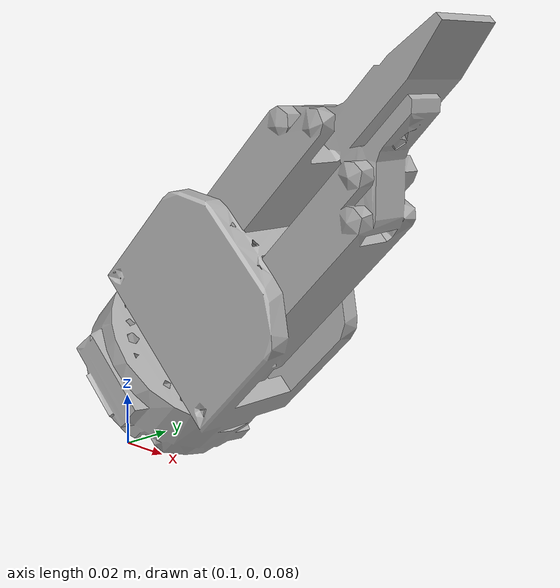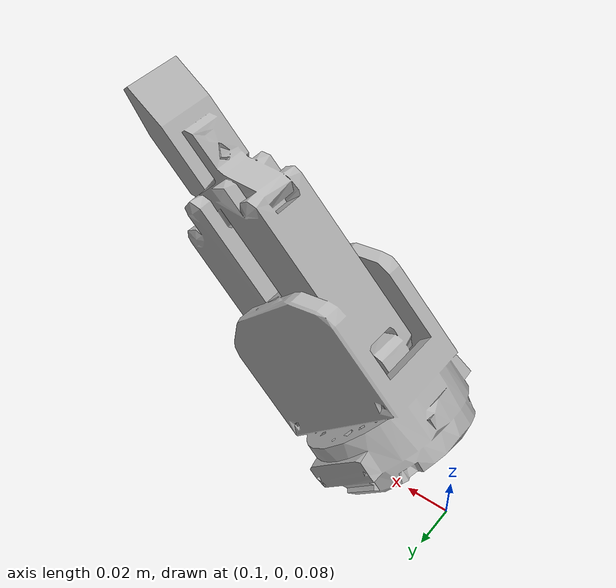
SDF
<?xml version="1.0" ?>
<sdf version="1.6">
  <model name="koras_2f100">
    <link name="link">
      <gravity>false</gravity>
      <visual name="visual">
        <geometry>
          <mesh>
            <uri>file:///root/workcell_ws_classic/src/descriptions/ur_description/meshes/toolchanger/Koras_2F100.STL</uri>
            <scale>1 1 1</scale>
          </mesh>
        </geometry>
        <material>
          <!-- Silver metallic -->
          <ambient>0.6 0.6 0.6 1</ambient>
          <diffuse>0.7 0.7 0.7 1</diffuse>
          <specular>0.8 0.8 0.8 1</specular>
          <emissive>0 0 0 1</emissive>
        </material>
      </visual>

        <inertial>
          <mass>1.0</mass>
          <inertia>
            <ixx>0.002</ixx>
            <ixy>0</ixy>
            <ixz>0</ixz>
            <iyy>0.002</iyy>
            <iyz>0</iyz>
            <izz>0.002</izz>
          </inertia>
        </inertial>
    </link>
  </model>
</sdf>
